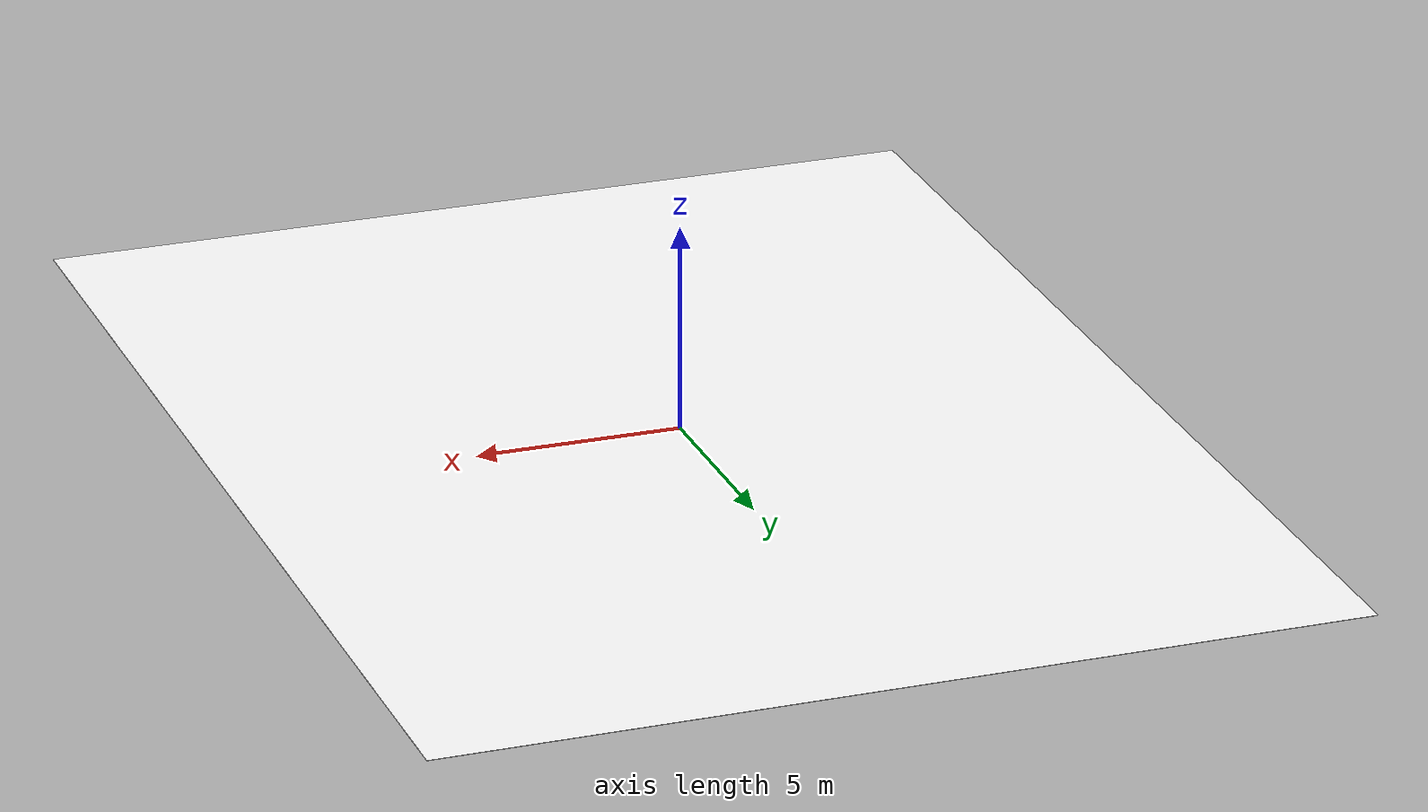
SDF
<?xml version="1.0"?>
<sdf version="1.4">
<model name="FNR2022_map">
  <static>true</static>
    <link name="link">
      <collision name="collision">
        <geometry>
			<box>
			  <size>22 29.9 0.01</size>
			</box>
        </geometry>
        <surface>
          <friction>
            <ode>
              <mu>100</mu>
              <mu2>50</mu2>
            </ode>
          </friction>
        </surface>
      </collision>
		<visual name="visual">
		  <geometry>
			<box>
			  <size>22 29.9 0.01</size>
			</box>
		  </geometry>

		  <material>
			<diffuse>1 1 1 1</diffuse>
			<pbr>
			  <metal>
				<albedo_map>materials/textures/track.png</albedo_map>
			  </metal>
			</pbr>
		  </material>
		</visual>
    </link>
  </model>
</sdf>
